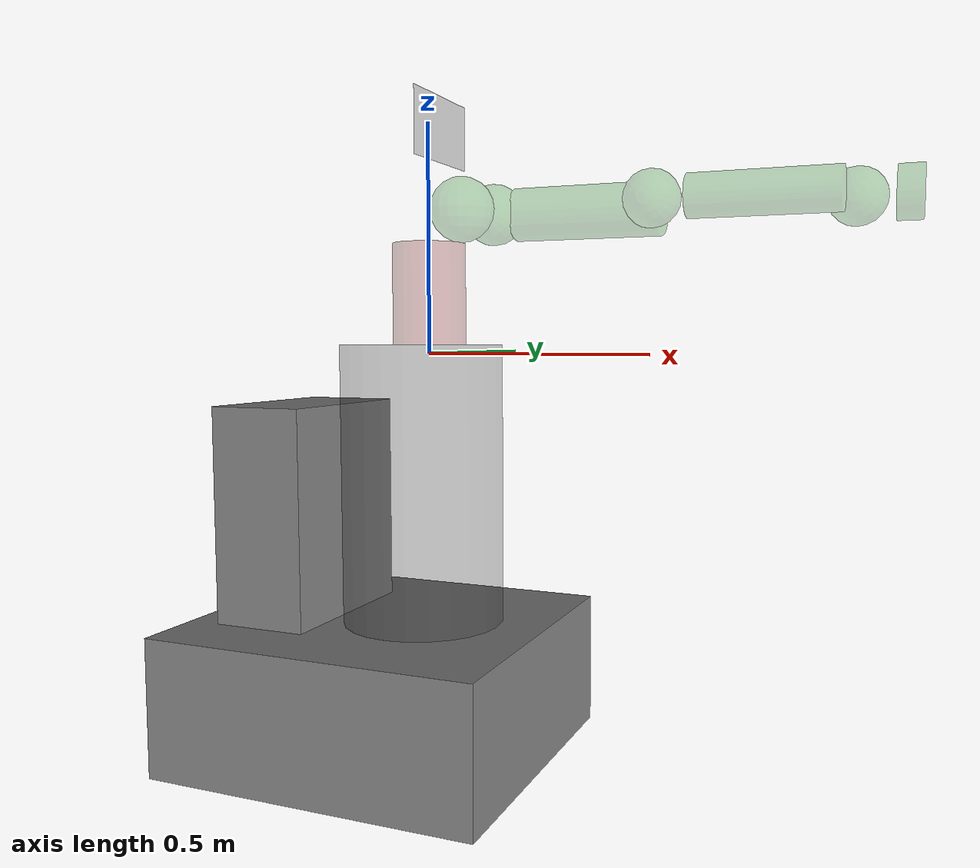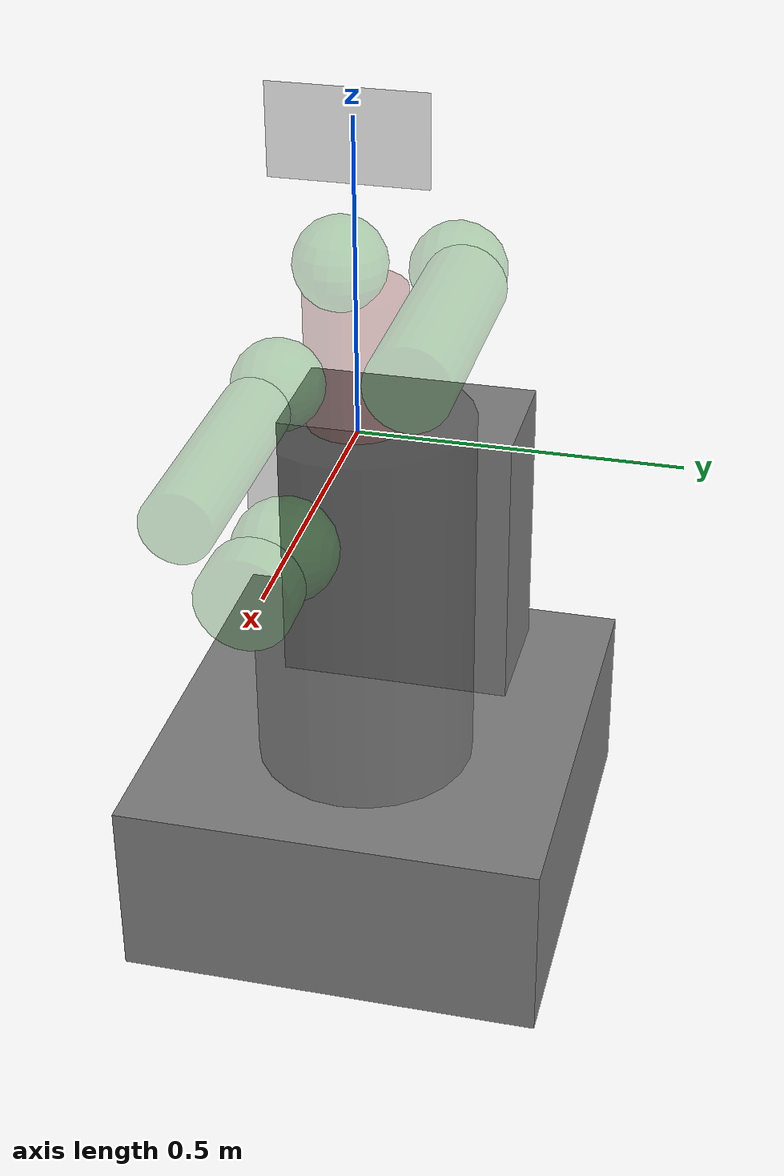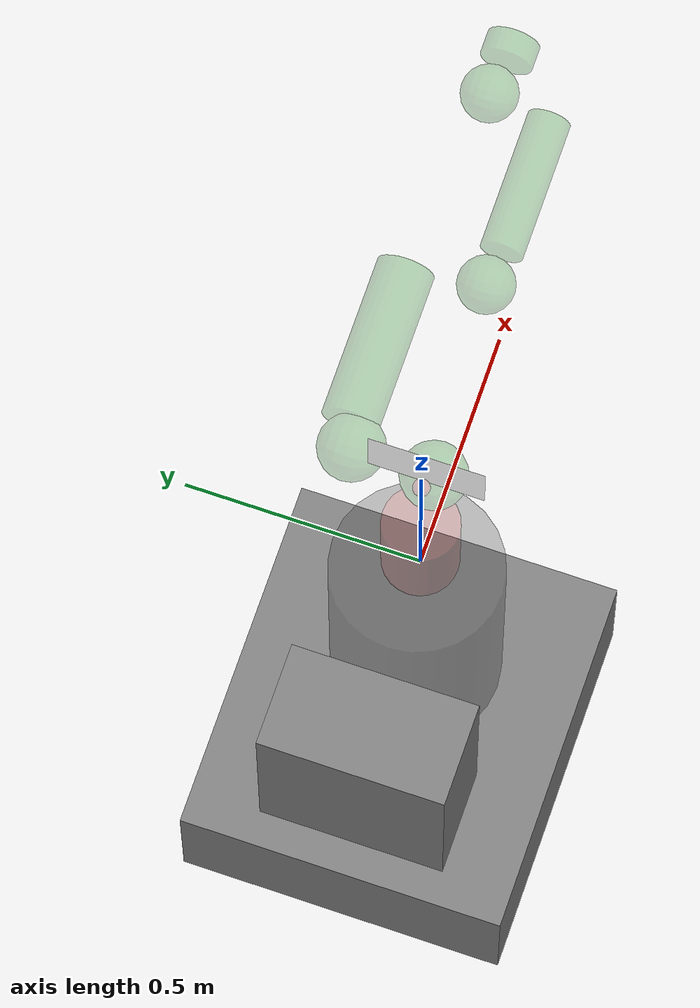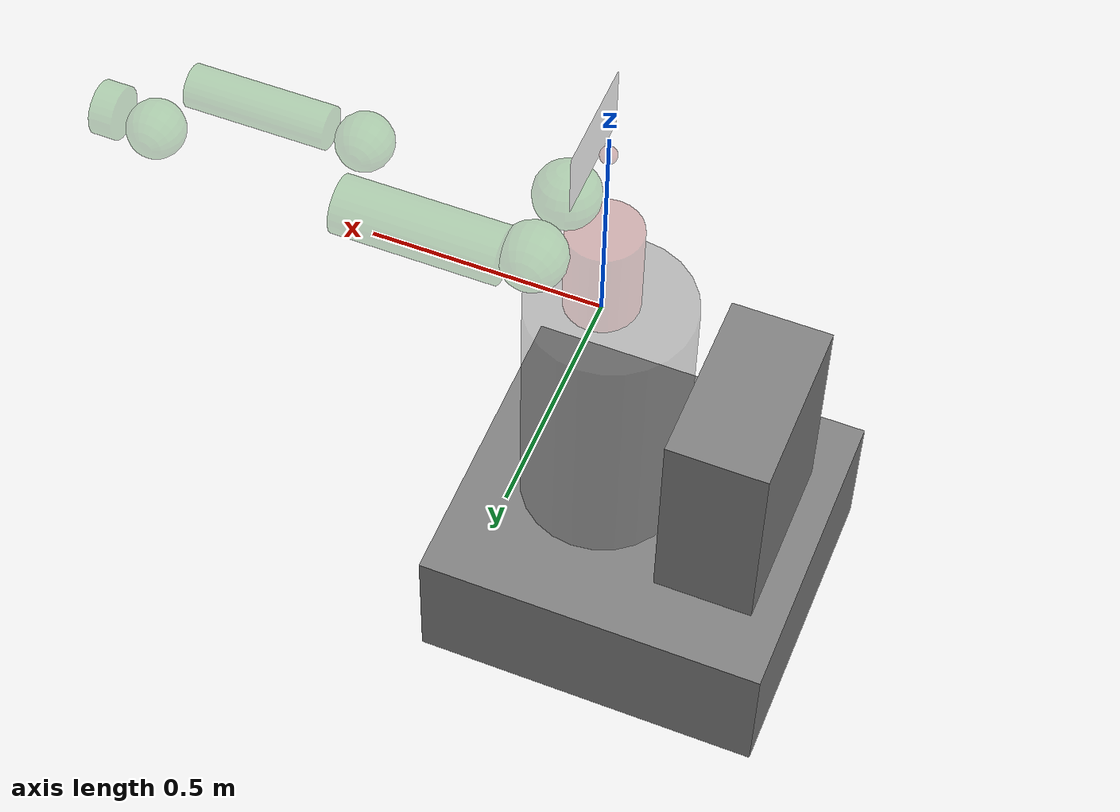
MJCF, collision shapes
<mujoco model="sawyer_target_indicator">
  <asset>
    <mesh file="meshes/pedestal.stl" name="pedestal"/>
    <mesh file="meshes/base.stl" name="base"/>
    <mesh file="meshes/l0.stl" name="l0"/>
    <mesh file="meshes/head.stl" name="head"/>
    <mesh file="meshes/l1.stl" name="l1"/>
    <mesh file="meshes/l2.stl" name="l2"/>
    <mesh file="meshes/l3.stl" name="l3"/>
    <mesh file="meshes/l4.stl" name="l4"/>
    <mesh file="meshes/l5.stl" name="l5"/>
    <mesh file="meshes/l6.stl" name="l6"/>
  </asset>
  <worldbody>
    <body name="base_target_indicator" pos="0 0 0" mocap='true'>
      <inertial diaginertia="0 0 0" mass="0" pos="0 0 0"/>
      <body name="controller_box_target_indicator" pos="0 0 0">
        <inertial diaginertia="1.71363 1.27988 0.809981" mass="46.64" pos="-0.325 0 -0.38"/>
        <geom pos="-0.325 0 -0.38" size="0.11 0.2 0.265" type="box" conaffinity="0" contype="0"/>
      </body>
      <body name="pedestal_feet_target_indicator" pos="0 0 0">
        <inertial diaginertia="8.16095 9.59375 15.0785" mass="167.09" pos="-0.1225 0 -0.758"/>
        <geom pos="-0.1225 0 -0.758" size="0.385 0.35 0.155" type="box" conaffinity="0" contype="0"/>
      </body>
      <body name="torso_target_indicator" pos="0 0 0">
        <inertial diaginertia="1e-08 1e-08 1e-08" mass="0.0001" pos="0 0 0"/>
        <geom conaffinity="0" contype="0" group="0" rgba="0.2 0.2 0.2 0.3" size="0.05 0.05 0.05" type="box"/>
      </body>
      <body name="pedestal_target_indicator" pos="0 0 0">
        <inertial diaginertia="6.0869 5.81635 4.20915" mass="60.864" pos="0 0 0" quat="0.659267 -0.259505 -0.260945 0.655692"/>
        <geom conaffinity="0" contype="0" group="0" mesh="pedestal" pos="0.26 0.345 -0.91488" quat="0.5 0.5 -0.5 -0.5" rgba="0.2 0.2 0.2 0.3" type="mesh"/>
        <geom pos="-0.02 0 -0.29" rgba="0.2 0.2 0.2 0.3" size="0.18 0.31" type="cylinder" conaffinity="0" contype="0"/>
      </body>
      <body name="right_arm_base_link_target_indicator" pos="0 0 0">
        <inertial diaginertia="0.00740351 0.00681776 0.00672942" mass="2.0687" pos="-0.0006241 -2.8025e-05 0.065404" quat="-0.209285 0.674441 0.227335 0.670558"/>
        <geom conaffinity="0" contype="0" group="0" mesh="base" rgba="0.5 0.1 0.1 0.3" type="mesh"/>
        <geom pos="0 0 0.12" rgba="0.5 0.1 0.1 0.3" size="0.08 0.12" type="cylinder" conaffinity="0" contype="0"/>
        <body name="right_l0_target_indicator" pos="0 0 0.08">
          <inertial diaginertia="0.0651588 0.0510944 0.0186218" mass="5.3213" pos="0.024366 0.010969 0.14363" quat="0.894823 0.00899958 -0.170275 0.412573"/>
          <joint axis="0 0 1" limited="true" name="right_j0_target_indicator" pos="0 0 0" range="-3.0503 3.0503"/>
          <geom conaffinity="0" contype="0" group="0" mesh="l0" rgba="0.1 0.5 0.1 0.3" type="mesh"/>
          <geom pos="0.08 0 0.23" rgba="0.1 0.5 0.1 0.3" size="0.07" conaffinity="0" contype="0"/>
          <body name="head_target_indicator" pos="0 0 0.2965">
            <inertial diaginertia="0.0118334 0.00827089 0.00496574" mass="1.5795" pos="0.0053207 -2.6549e-05 0.1021" quat="0.999993 7.08405e-05 -0.00359857 -0.000626247"/>
            <joint axis="0 0 1" limited="true" name="head_pan_target_indicator" pos="0 0 0" range="-5.0952 0.9064"/>
            <geom conaffinity="0" contype="0" group="0" mesh="head" rgba="0.5 0.1 0.1 0.3" type="mesh"/>
            <geom pos="0 0 0.08" rgba="0.5 0.1 0.1 0.3" size="0.018" conaffinity="0" contype="0"/>
            <body name="screen_target_indicator" pos="0.03 0 0.105" quat="0.5 0.5 0.5 0.5">
              <inertial diaginertia="1e-08 1e-08 1e-08" mass="0.0001" pos="0 0 0"/>
              <geom conaffinity="0" contype="0" group="0" rgba="0.2 0.2 0.2 0.3" size="0.12 0.07 0.001" type="box"/>
              <geom rgba="0.2 0.2 0.2 0.3" size="0.001" conaffinity="0" contype="0"/>
            </body>
            <body name="head_camera_target_indicator" pos="0.0228027 0 0.216572" quat="0.342813 -0.618449 0.618449 -0.342813">
              <inertial diaginertia="0 0 0" mass="0" pos="0.0228027 0 0.216572" quat="0.342813 -0.618449 0.618449 -0.342813"/>
            </body>
          </body>
          <body name="right_torso_itb_target_indicator" pos="-0.055 0 0.22" quat="0.707107 0 -0.707107 0">
            <inertial diaginertia="1e-08 1e-08 1e-08" mass="0.0001" pos="0 0 0"/>
          </body>
          <body name="right_l1_target_indicator" pos="0.081 0.05 0.237" quat="0.5 -0.5 0.5 0.5">
            <inertial diaginertia="0.0224339 0.0221624 0.0097097" mass="4.505" pos="-0.0030849 -0.026811 0.092521" quat="0.424888 0.891987 0.132364 -0.0794296"/>
            <joint axis="0 0 1" limited="true" name="right_j1_target_indicator" pos="0 0 0" range="-3.8095 2.2736"/>
            <geom conaffinity="0" contype="0" group="0" mesh="l1" rgba="0.1 0.5 0.1 0.3" type="mesh"/>
            <geom pos="0 0 0.1225" rgba="0.1 0.5 0.1 0.3" size="0.07" conaffinity="0" contype="0"/>
            <body name="right_l2_target_indicator" pos="0 -0.14 0.1425" quat="0.707107 0.707107 0 0">
              <inertial diaginertia="0.0257928 0.025506 0.00292515" mass="1.745" pos="-0.00016044 -0.014967 0.13582" quat="0.707831 -0.0524761 0.0516007 0.702537"/>
              <joint axis="0 0 1" limited="true" name="right_j2_target_indicator" pos="0 0 0" range="-3.0426 3.0426"/>
              <geom conaffinity="0" contype="0" group="0" mesh="l2" rgba="0.1 0.5 0.1 0.3" type="mesh"/>
              <geom pos="0 0 0.08" rgba="0.1 0.5 0.1 0.3" size="0.06 0.17" type="cylinder" conaffinity="0" contype="0"/>
              <body name="right_l3_target_indicator" pos="0 -0.042 0.26" quat="0.707107 -0.707107 0 0">
                <inertial diaginertia="0.0102404 0.0096997 0.00369622" mass="2.5097" pos="-0.0048135 -0.0281 -0.084154" quat="0.902999 0.385391 -0.0880901 0.168247"/>
                <joint axis="0 0 1" limited="true" name="right_j3_target_indicator" pos="0 0 0" range="-3.0439 3.0439"/>
                <geom conaffinity="0" contype="0" group="0" mesh="l3" rgba="0.1 0.5 0.1 0.3" type="mesh"/>
                <geom pos="0 -0.01 -0.12" rgba="0.1 0.5 0.1 0.3" size="0.06" conaffinity="0" contype="0"/>
                <body name="right_l4_target_indicator" pos="0 -0.125 -0.1265" quat="0.707107 0.707107 0 0">
                  <inertial diaginertia="0.0136549 0.0135493 0.00127353" mass="1.1136" pos="-0.0018844 0.0069001 0.1341" quat="0.803612 0.031257 -0.0298334 0.593582"/>
                  <joint axis="0 0 1" limited="true" name="right_j4_target_indicator" pos="0 0 0" range="-2.9761 2.9761"/>
                  <geom conaffinity="0" contype="0" group="0" mesh="l4" rgba="0.1 0.5 0.1 0.3" type="mesh"/>
                  <geom pos="0 0 0.11" rgba="0.1 0.5 0.1 0.3" size="0.045 0.15" type="cylinder" conaffinity="0" contype="0"/>
                  <body name="right_arm_itb_target_indicator" pos="-0.055 0 0.075" quat="0.707107 0 -0.707107 0">
                    <inertial diaginertia="1e-08 1e-08 1e-08" mass="0.0001" pos="0 0 0"/>
                  </body>
                  <body name="right_l5_target_indicator" pos="0 0.031 0.275" quat="0.707107 -0.707107 0 0">
                    <inertial diaginertia="0.00474131 0.00422857 0.00190672" mass="1.5625" pos="0.0061133 -0.023697 0.076416" quat="0.404076 0.9135 0.0473125 0.00158335"/>
                    <joint axis="0 0 1" limited="true" name="right_j5_target_indicator" pos="0 0 0" range="-2.9761 2.9761" damping="0.2"/>
                    <geom conaffinity="0" contype="0" group="0" mesh="l5" rgba="0.1 0.5 0.1 0.3" type="mesh"/>
                    <geom pos="0 0 0.1" rgba="0.1 0.5 0.1 0.3" size="0.06" conaffinity="0" contype="0"/>
                    <body name="right_hand_camera_target_indicator" pos="0.039552 -0.033 0.0695" quat="0.707107 0 0.707107 0">
                      <inertial diaginertia="0 0 0" mass="0" pos="0.039552 -0.033 0.0695" quat="0.707107 0 0.707107 0"/>
                    </body>
                    <body name="right_wrist_target_indicator" pos="0 0 0.10541" quat="0.707107 0.707107 0 0">
                      <inertial diaginertia="0 0 0" mass="0" pos="0 0 0.10541" quat="0.707107 0.707107 0 0"/>
                    </body>
                    <body name="right_l6_target_indicator" pos="0 -0.11 0.1053" quat="0.0616248 0.06163 -0.704416 0.704416">
                      <inertial diaginertia="0.000360258 0.000311068 0.000214974" mass="0.3292" pos="-8.0726e-06 0.0085838 -0.0049566" quat="0.479044 0.515636 -0.513069 0.491322"/>
                      <joint axis="0 0 1" limited="true" name="right_j6_target_indicator" pos="0 0 0" range="-4.7124 4.7124" damping="0.1"/>
                      <geom conaffinity="0" contype="0" group="0" mesh="l6" rgba="0.1 0.5 0.1 0.3" type="mesh"/>
                      <geom pos="0 0.015 -0.01" rgba="0.1 0.5 0.1 0.3" size="0.055 0.025" type="cylinder" conaffinity="0" contype="0"/>
                      <body name="right_hand_target_indicator" pos="0 0 0.0245" quat="0.707105 0 0 0.707108">
                                              <!-- To add gripper -->
                                          </body>
                    </body>
                  </body>
                  <body name="right_l4_2_target_indicator" pos="0 0 0">
                    <inertial diaginertia="1e-08 1e-08 1e-08" mass="1e-08" pos="1e-08 1e-08 1e-08" quat="0.820473 0.339851 -0.17592 0.424708"/>
                  </body>
                </body>
              </body>
              <body name="right_l2_2_target_indicator" pos="0 0 0">
                <inertial diaginertia="1e-08 1e-08 1e-08" mass="1e-08" pos="1e-08 1e-08 1e-08" quat="0.820473 0.339851 -0.17592 0.424708"/>
              </body>
            </body>
            <body name="right_l1_2_target_indicator" pos="0 0 0">
              <inertial diaginertia="1e-08 1e-08 1e-08" mass="1e-08" pos="1e-08 1e-08 1e-08" quat="0.820473 0.339851 -0.17592 0.424708"/>
            </body>
          </body>
        </body>
      </body>
    </body>
  </worldbody>
</mujoco>
